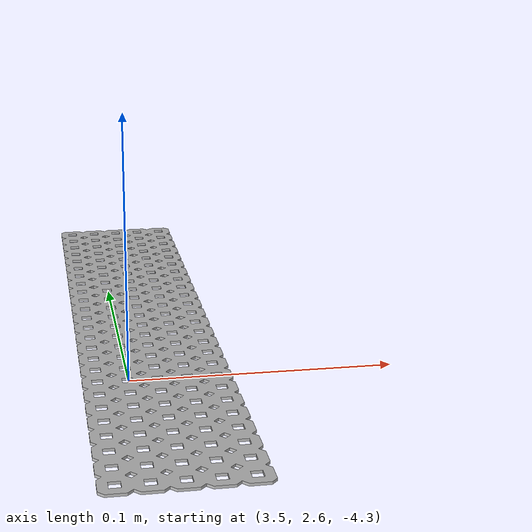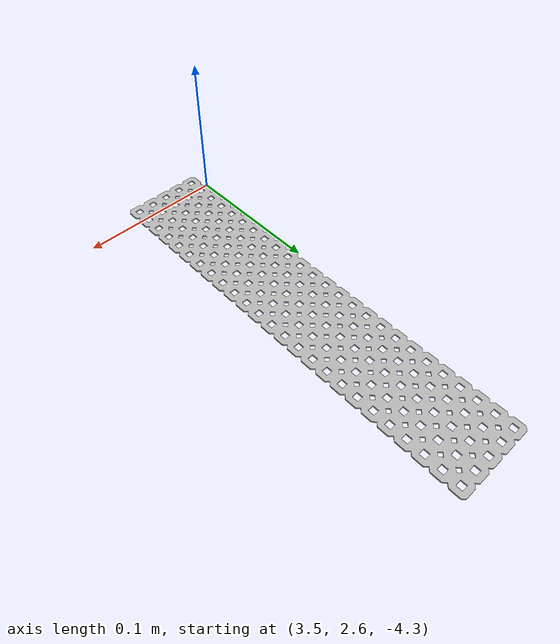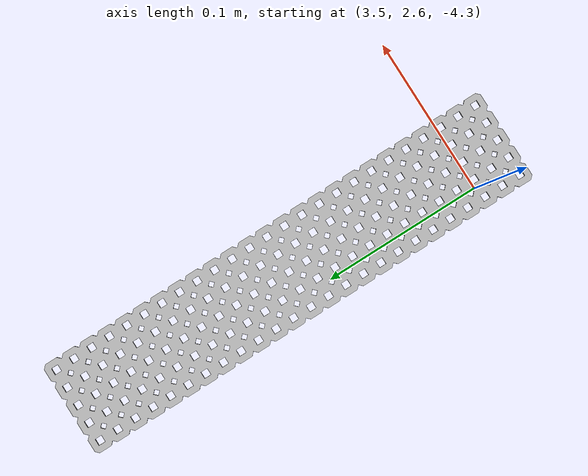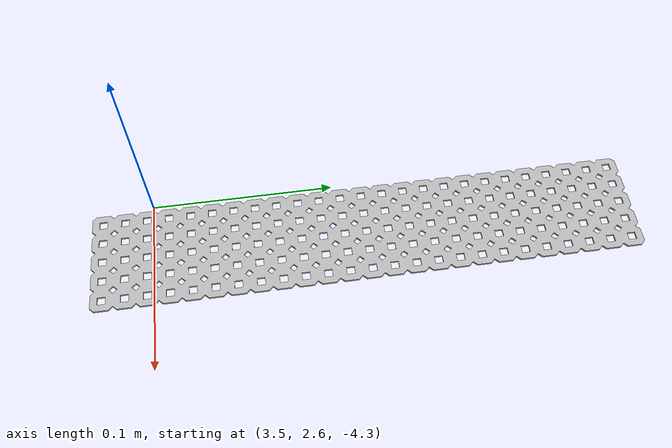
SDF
<?xml version='1.0'?>
<sdf version="1.4">
	<model name="Plate_25x5">
		<pose>0 0 0 0 0 0</pose>
		<static>true</static>
		<link name="body">
			<collision name="collision">
				<geometry>
					<box>
						<size>0.063499 0.317496 0.001168</size>
					</box>
				</geometry>
			</collision>
			<visual name="visual">
				<geometry>
					<mesh><uri>model://Plate_25x5/Plate_25x5.dae</uri></mesh>
				</geometry>
			</visual>
		</link>
	</model>
</sdf>
